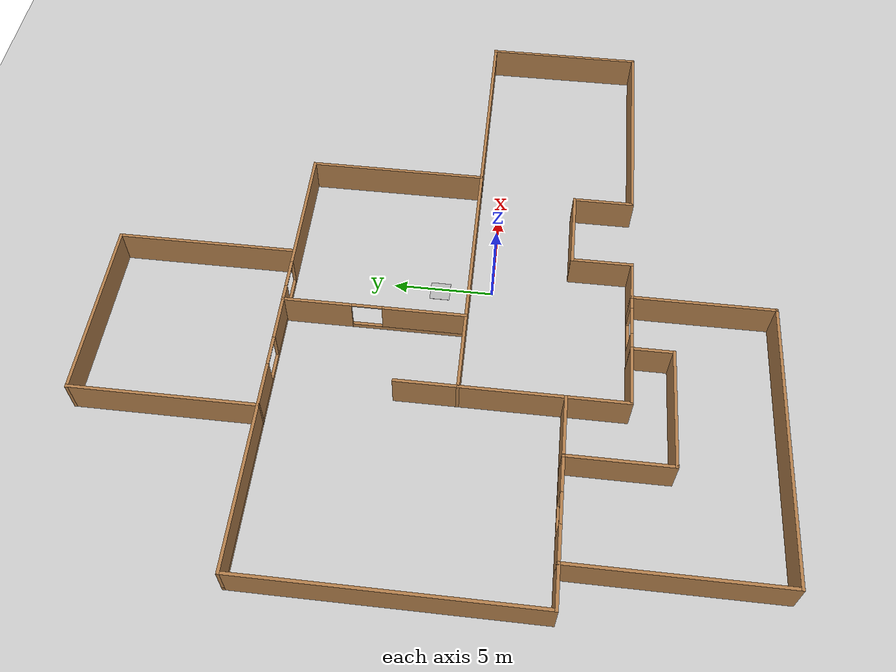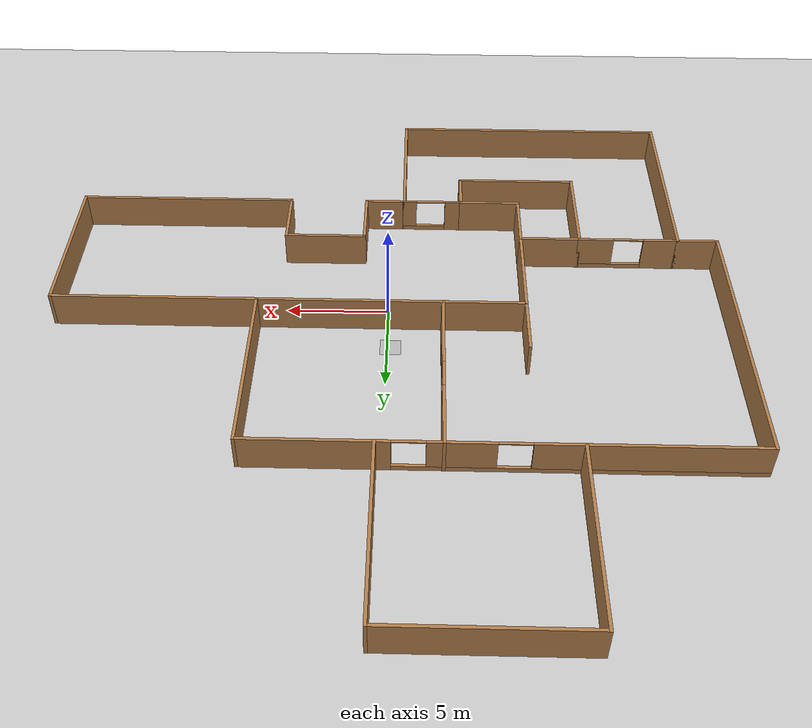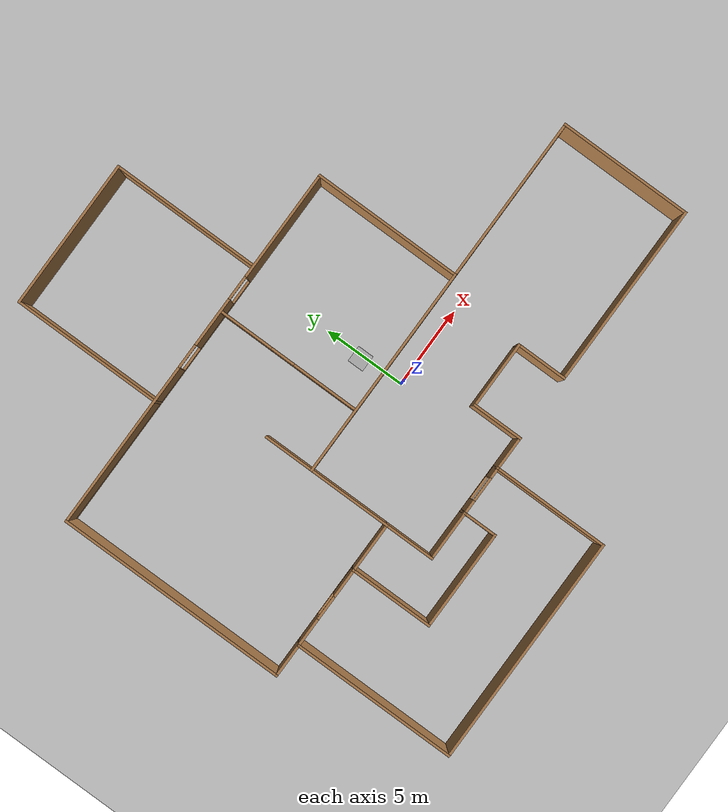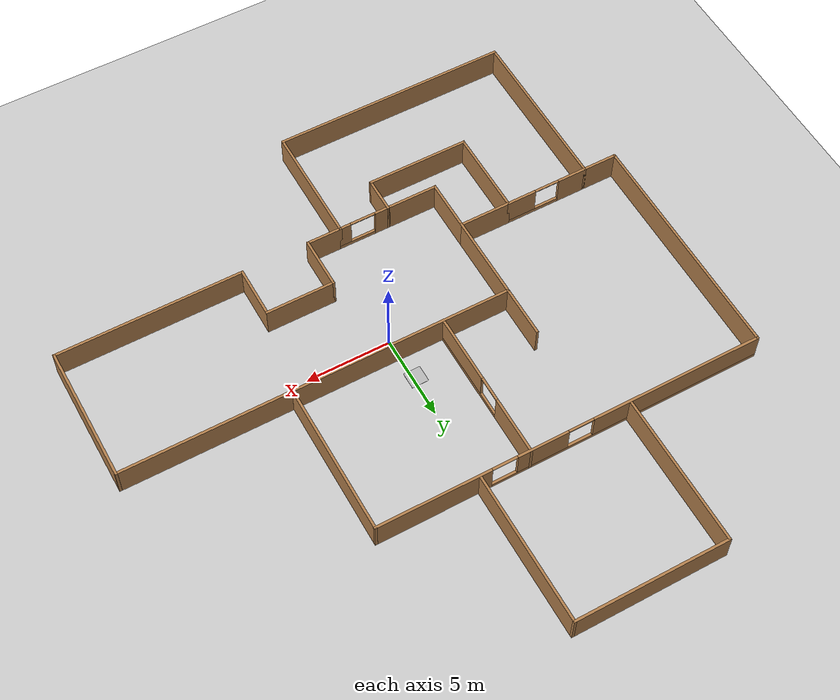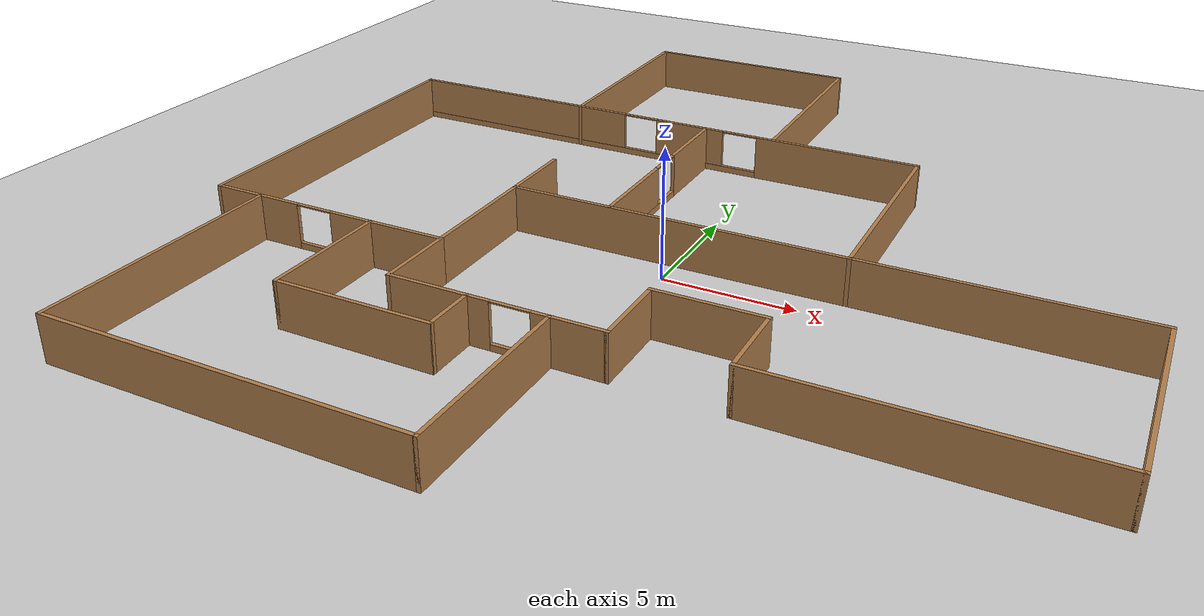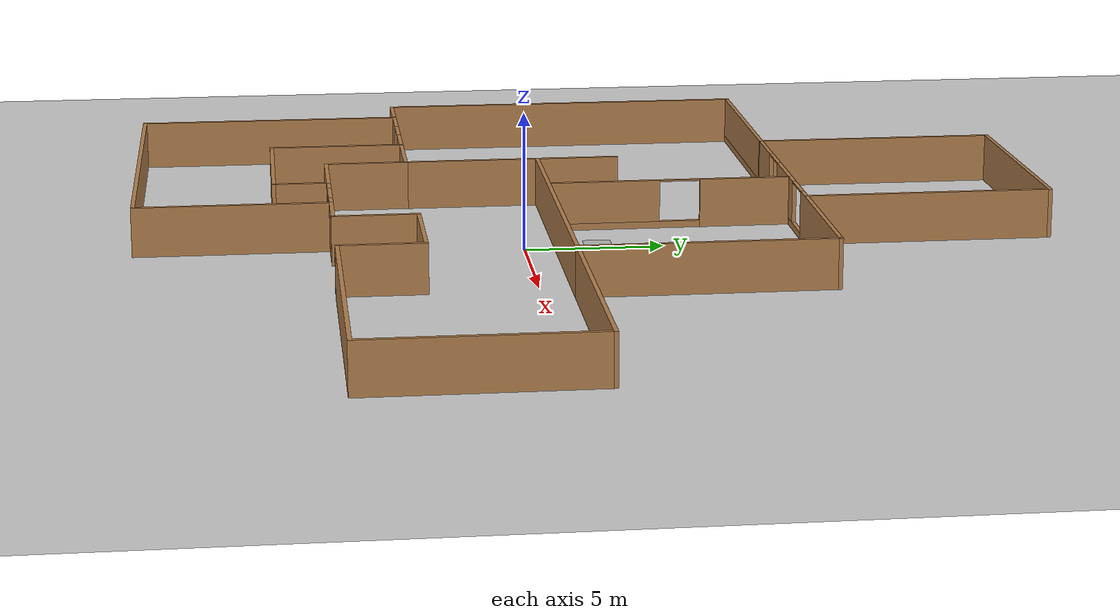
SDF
<sdf version="1.7">
 <world name="default">
  <model name="ground_plane">
   <static>1</static>
   <link name="link">
    <collision name="collision">
     <geometry><plane><normal>0 0 1</normal><size>25 25</size></plane></geometry>
     <surface><friction><ode><mu>100</mu><mu2>50</mu2></ode></friction></surface>
    </collision>
    <visual name="visual">
     <cast_shadows>0</cast_shadows>
     <geometry><plane><normal>0 0 1</normal><size>25 25</size></plane></geometry>
     <material>
      <script><uri>file://media/materials/scripts/gazebo.material</uri><name>Gazebo/Grey</name></script>
     </material>
    </visual>
   </link>
  </model>
  <model name="0810_MAP2_elment_1">
   <pose>-0.172553 2.6421 0 0 -0 0</pose>
   <link name="startflag">
    <pose>0 0 0.115 0 -0 0</pose>
    <inertial>
     <mass>0.39</mass>
     <inertia><ixx>0.00058</ixx><ixy>0</ixy><ixz>0</ixz><iyy>0.00058</iyy><iyz>0</iyz><izz>0.00019</izz></inertia>
    </inertial>
    <collision name="collision"><geometry><box><size>1 1 0.01</size></box></geometry></collision>
    <visual name="visual">
     <geometry><box><size>1 1 0.01</size></box></geometry>
     <material>
      <script>
       <uri>model://apriltag/materials/scripts</uri>
       <uri>model://apriltag/materials/textures</uri>
       <name>startflag/Diffuse</name>
      </script>
     </material>
    </visual>
   </link>
   <link name="Wall_0">
    <collision name="Wall_0_Collision">
     <geometry><box><size>13.15 0.15 1.8</size></box></geometry>
     <pose>0 0 0.9 0 -0 0</pose>
    </collision>
    <visual name="Wall_0_Visual">
     <pose>0 0 0.9 0 -0 0</pose>
     <geometry><box><size>13.15 0.15 1.8</size></box></geometry>
     <material>
      <script><uri>file://media/materials/scripts/gazebo.material</uri><name>Gazebo/Wood</name></script>
      <ambient>1 1 1 1</ambient>
     </material>
     <meta><layer>0</layer></meta>
    </visual>
    <pose>0 -1.5 0 0 -0 0</pose>
   </link>
   <link name="Wall_10">
    <collision name="Wall_10_Collision">
     <geometry><box><size>14.15 0.15 1.8</size></box></geometry>
     <pose>0 0 0.9 0 -0 0</pose>
    </collision>
    <visual name="Wall_10_Visual">
     <pose>0 0 0.9 0 -0 0</pose>
     <geometry><box><size>14.15 0.15 1.8</size></box></geometry>
     <material>
      <script><uri>file://media/materials/scripts/gazebo.material</uri><name>Gazebo/Wood</name></script>
      <ambient>1 1 1 1</ambient>
     </material>
     <meta><layer>0</layer></meta>
    </visual>
    <pose>-16.5 0.5 0 0 -0 -1.5708</pose>
   </link>
   <link name="Wall_14">
    <collision name="Wall_14_Collision">
     <geometry><box><size>5.15 0.15 1.8</size></box></geometry>
     <pose>0 0 0.9 0 -0 0</pose>
    </collision>
    <visual name="Wall_14_Visual">
     <pose>0 0 0.9 0 -0 0</pose>
     <geometry><box><size>5.15 0.15 1.8</size></box></geometry>
     <material>
      <script><uri>file://media/materials/scripts/gazebo.material</uri><name>Gazebo/Wood</name></script>
      <ambient>1 1 1 1</ambient>
     </material>
     <meta><layer>0</layer></meta>
    </visual>
    <pose>-6.5 -4 0 0 -0 -1.5708</pose>
   </link>
   <link name="Wall_16">
    <collision name="Wall_16_Collision">
     <geometry><box><size>10.15 0.15 1.8</size></box></geometry>
     <pose>0 0 0.9 0 -0 0</pose>
    </collision>
    <visual name="Wall_16_Visual">
     <pose>0 0 0.9 0 -0 0</pose>
     <geometry><box><size>10.15 0.15 1.8</size></box></geometry>
     <material>
      <script><uri>file://media/materials/scripts/gazebo.material</uri><name>Gazebo/Wood</name></script>
      <ambient>1 1 1 1</ambient>
     </material>
     <meta><layer>0</layer></meta>
    </visual>
    <pose>-14.5 -11.5 0 0 -0 -1.5708</pose>
   </link>
   <link name="Wall_18">
    <collision name="Wall_18_Collision">
     <geometry><box><size>3.15 0.15 1.8</size></box></geometry>
     <pose>0 0 0.9 0 -0 0</pose>
    </collision>
    <visual name="Wall_18_Visual">
     <pose>0 0 0.9 0 -0 0</pose>
     <geometry><box><size>3.15 0.15 1.8</size></box></geometry>
     <material>
      <script><uri>file://media/materials/scripts/gazebo.material</uri><name>Gazebo/Wood</name></script>
      <ambient>1 1 1 1</ambient>
     </material>
     <meta><layer>0</layer></meta>
    </visual>
    <pose>-6.5 -8 0 0 -0 -1.5708</pose>
   </link>
   <link name="Wall_2">
    <collision name="Wall_2_Collision">
     <geometry><box><size>9.15 0.15 1.8</size></box></geometry>
     <pose>0 0 0.9 0 -0 0</pose>
    </collision>
    <visual name="Wall_2_Visual">
     <pose>0 0 0.9 0 -0 0</pose>
     <geometry><box><size>9.15 0.15 1.8</size></box></geometry>
     <material>
      <script><uri>file://media/materials/scripts/gazebo.material</uri><name>Gazebo/Wood</name></script>
      <ambient>1 1 1 1</ambient>
     </material>
     <meta><layer>0</layer></meta>
    </visual>
    <pose>6.5 3 0 0 -0 1.5708</pose>
   </link>
   <link name="Wall_20">
    <collision name="Wall_20_Collision">
     <geometry><box><size>5.15 0.15 1.8</size></box></geometry>
     <pose>0 0 0.9 0 -0 0</pose>
    </collision>
    <visual name="Wall_20_Visual">
     <pose>0 0 0.9 0 -0 0</pose>
     <geometry><box><size>5.15 0.15 1.8</size></box></geometry>
     <material>
      <script><uri>file://media/materials/scripts/gazebo.material</uri><name>Gazebo/Wood</name></script>
      <ambient>1 1 1 1</ambient>
     </material>
     <meta><layer>0</layer></meta>
    </visual>
    <pose>-9.5 -9 0 0 -0 -1.5708</pose>
   </link>
   <link name="Wall_22">
    <collision name="Wall_22_Collision">
     <geometry><box><size>2.15 0.15 1.8</size></box></geometry>
     <pose>0 0 0.9 0 -0 0</pose>
    </collision>
    <visual name="Wall_22_Visual">
     <pose>0 0 0.9 0 -0 0</pose>
     <geometry><box><size>2.15 0.15 1.8</size></box></geometry>
     <material>
      <script><uri>file://media/materials/scripts/gazebo.material</uri><name>Gazebo/Wood</name></script>
      <ambient>1 1 1 1</ambient>
     </material>
     <meta><layer>0</layer></meta>
    </visual>
    <pose>-15.5 -6.5 0 0 -0 0</pose>
   </link>
   <link name="Wall_24">
    <collision name="Wall_24_Collision">
     <geometry><box><size>3.15 0.15 1.8</size></box></geometry>
     <pose>0 0 0.9 0 -0 0</pose>
    </collision>
    <visual name="Wall_24_Visual">
     <pose>0 0 0.9 0 -0 0</pose>
     <geometry><box><size>3.15 0.15 1.8</size></box></geometry>
     <material>
      <script><uri>file://media/materials/scripts/gazebo.material</uri><name>Gazebo/Wood</name></script>
      <ambient>1 1 1 1</ambient>
     </material>
     <meta><layer>0</layer></meta>
    </visual>
    <pose>-8 -6.5 0 0 -0 0</pose>
   </link>
   <link name="Wall_26">
    <collision name="Wall_26_Collision">
     <geometry><box><size>14.15 0.15 1.8</size></box></geometry>
     <pose>0 0 0.9 0 -0 0</pose>
    </collision>
    <visual name="Wall_26_Visual">
     <pose>0 0 0.9 0 -0 0</pose>
     <geometry><box><size>14.15 0.15 1.8</size></box></geometry>
     <material>
      <script><uri>file://media/materials/scripts/gazebo.material</uri><name>Gazebo/Wood</name></script>
      <ambient>1 1 1 1</ambient>
     </material>
     <meta><layer>0</layer></meta>
    </visual>
    <pose>-7.5 -16.5 0 0 -0 0</pose>
   </link>
   <link name="Wall_28">
    <collision name="Wall_28_Collision">
     <geometry><box><size>6.15 0.15 1.8</size></box></geometry>
     <pose>0 0 0.9 0 -0 0</pose>
    </collision>
    <visual name="Wall_28_Visual">
     <pose>0 0 0.9 0 -0 0</pose>
     <geometry><box><size>6.15 0.15 1.8</size></box></geometry>
     <material>
      <script><uri>file://media/materials/scripts/gazebo.material</uri><name>Gazebo/Wood</name></script>
      <ambient>1 1 1 1</ambient>
     </material>
     <meta><layer>0</layer></meta>
    </visual>
    <pose>-6.5 -11.5 0 0 -0 0</pose>
   </link>
   <link name="Wall_30">
    <collision name="Wall_30_Collision">
     <geometry><box><size>2.15 0.15 1.8</size></box></geometry>
     <pose>0 0 0.9 0 -0 0</pose>
    </collision>
    <visual name="Wall_30_Visual">
     <pose>0 0 0.9 0 -0 0</pose>
     <geometry><box><size>2.15 0.15 1.8</size></box></geometry>
     <material>
      <script><uri>file://media/materials/scripts/gazebo.material</uri><name>Gazebo/Wood</name></script>
      <ambient>1 1 1 1</ambient>
     </material>
     <meta><layer>0</layer></meta>
    </visual>
    <pose>-3.5 -10.5 0 0 -0 -1.5708</pose>
   </link>
   <link name="Wall_32">
    <collision name="Wall_32_Collision">
     <geometry><box><size>7.15 0.15 1.8</size></box></geometry>
     <pose>0 0 0.9 0 -0 0</pose>
    </collision>
    <visual name="Wall_32_Visual">
     <pose>0 0 0.9 0 -0 0</pose>
     <geometry><box><size>7.15 0.15 1.8</size></box></geometry>
     <material>
      <script><uri>file://media/materials/scripts/gazebo.material</uri><name>Gazebo/Wood</name></script>
      <ambient>1 1 1 1</ambient>
     </material>
     <meta><layer>0</layer></meta>
    </visual>
    <pose>-0.5 -13 0 0 -0 1.5708</pose>
   </link>
   <link name="Wall_36">
    <collision name="Wall_36_Collision">
     <geometry><box><size>3.15 0.15 1.8</size></box></geometry>
     <pose>0 0 0.9 0 -0 0</pose>
    </collision>
    <visual name="Wall_36_Visual">
     <pose>0 0 0.9 0 -0 0</pose>
     <geometry><box><size>3.15 0.15 1.8</size></box></geometry>
     <material>
      <script><uri>file://media/materials/scripts/gazebo.material</uri><name>Gazebo/Wood</name></script>
      <ambient>1 1 1 1</ambient>
     </material>
     <meta><layer>0</layer></meta>
    </visual>
    <pose>-5 -9.5 0 0 -0 0</pose>
   </link>
   <link name="Wall_37">
    <pose>-2 -9.5 0 0 -0 0</pose>
    <visual name="Wall_37_Visual_0">
     <pose>-1.11242 0 0.9 0 -0 0</pose>
     <geometry><box><size>0.925162 0.15 1.8</size></box></geometry>
     <material>
      <script><uri>file://media/materials/scripts/gazebo.material</uri><name>Gazebo/Wood</name></script>
      <ambient>1 1 1 1</ambient>
     </material>
     <meta><layer>0</layer></meta>
    </visual>
    <collision name="Wall_37_Collision_0">
     <geometry><box><size>0.925162 0.15 1.8</size></box></geometry>
     <pose>-1.11242 0 0.9 0 -0 0</pose>
    </collision>
    <visual name="Wall_37_Visual_1">
     <pose>0.462581 0 0.125 0 -0 0</pose>
     <geometry><box><size>2.22484 0.15 0.25</size></box></geometry>
     <material>
      <script><uri>file://media/materials/scripts/gazebo.material</uri><name>Gazebo/Wood</name></script>
      <ambient>1 1 1 1</ambient>
     </material>
     <meta><layer>0</layer></meta>
    </visual>
    <collision name="Wall_37_Collision_1">
     <geometry><box><size>2.22484 0.15 0.25</size></box></geometry>
     <pose>0.462581 0 0.125 0 -0 0</pose>
    </collision>
    <visual name="Wall_37_Visual_2">
     <pose>1.21258 0 1.025 0 -0 0</pose>
     <geometry><box><size>0.724838 0.15 1.55</size></box></geometry>
     <material>
      <script><uri>file://media/materials/scripts/gazebo.material</uri><name>Gazebo/Wood</name></script>
      <ambient>1 1 1 1</ambient>
     </material>
     <meta><layer>0</layer></meta>
    </visual>
    <collision name="Wall_37_Collision_2">
     <geometry><box><size>0.724838 0.15 1.55</size></box></geometry>
     <pose>1.21258 0 1.025 0 -0 0</pose>
    </collision>
    <visual name="Wall_37_Visual_3">
     <pose>0.100162 0 1.775 0 -0 0</pose>
     <geometry><box><size>1.5 0.15 0.05</size></box></geometry>
     <material>
      <script><uri>file://media/materials/scripts/gazebo.material</uri><name>Gazebo/Wood</name></script>
      <ambient>1 1 1 1</ambient>
     </material>
     <meta><layer>0</layer></meta>
    </visual>
    <collision name="Wall_37_Collision_3">
     <geometry><box><size>1.5 0.15 0.05</size></box></geometry>
     <pose>0.100162 0 1.775 0 -0 0</pose>
    </collision>
   </link>
   <link name="Wall_39">
    <pose>-12 -6.5 0 0 -0 0</pose>
    <visual name="Wall_39_Visual_0">
     <pose>-1.66475 0 0.9 0 -0 0</pose>
     <geometry><box><size>1.82051 0.15 1.8</size></box></geometry>
     <material>
      <script><uri>file://media/materials/scripts/gazebo.material</uri><name>Gazebo/Wood</name></script>
      <ambient>1 1 1 1</ambient>
     </material>
     <meta><layer>0</layer></meta>
    </visual>
    <collision name="Wall_39_Collision_0">
     <geometry><box><size>1.82051 0.15 1.8</size></box></geometry>
     <pose>-1.66475 0 0.9 0 -0 0</pose>
    </collision>
    <visual name="Wall_39_Visual_1">
     <pose>0.910253 0 0.125 0 -0 0</pose>
     <geometry><box><size>3.3295 0.15 0.25</size></box></geometry>
     <material>
      <script><uri>file://media/materials/scripts/gazebo.material</uri><name>Gazebo/Wood</name></script>
      <ambient>1 1 1 1</ambient>
     </material>
     <meta><layer>0</layer></meta>
    </visual>
    <collision name="Wall_39_Collision_1">
     <geometry><box><size>3.3295 0.15 0.25</size></box></geometry>
     <pose>0.910253 0 0.125 0 -0 0</pose>
    </collision>
    <visual name="Wall_39_Visual_2">
     <pose>1.66025 0 1.025 0 -0 0</pose>
     <geometry><box><size>1.8295 0.15 1.55</size></box></geometry>
     <material>
      <script><uri>file://media/materials/scripts/gazebo.material</uri><name>Gazebo/Wood</name></script>
      <ambient>1 1 1 1</ambient>
     </material>
     <meta><layer>0</layer></meta>
    </visual>
    <collision name="Wall_39_Collision_2">
     <geometry><box><size>1.8295 0.15 1.55</size></box></geometry>
     <pose>1.66025 0 1.025 0 -0 0</pose>
    </collision>
    <visual name="Wall_39_Visual_3">
     <pose>-0.004495 0 1.775 0 -0 0</pose>
     <geometry><box><size>1.5 0.15 0.05</size></box></geometry>
     <material>
      <script><uri>file://media/materials/scripts/gazebo.material</uri><name>Gazebo/Wood</name></script>
      <ambient>1 1 1 1</ambient>
     </material>
     <meta><layer>0</layer></meta>
    </visual>
    <collision name="Wall_39_Collision_3">
     <geometry><box><size>1.5 0.15 0.05</size></box></geometry>
     <pose>-0.004495 0 1.775 0 -0 0</pose>
    </collision>
   </link>
   <link name="Wall_4">
    <pose>-5 7.5 0 0 -0 3.14159</pose>
    <visual name="Wall_4_Visual_0">
     <pose>-8.17816 0 0.9 0 -0 0</pose>
     <geometry><box><size>6.79369 0.15 1.8</size></box></geometry>
     <material>
      <script><uri>file://media/materials/scripts/gazebo.material</uri><name>Gazebo/Wood</name></script>
      <ambient>1 1 1 1</ambient>
     </material>
     <meta><layer>0</layer></meta>
    </visual>
    <collision name="Wall_4_Collision_0">
     <geometry><box><size>6.79369 0.15 1.8</size></box></geometry>
     <pose>-8.17816 0 0.9 0 -0 0</pose>
    </collision>
    <visual name="Wall_4_Visual_1">
     <pose>3.39684 0 0.125 0 -0 0</pose>
     <geometry><box><size>16.3563 0.15 0.25</size></box></geometry>
     <material>
      <script><uri>file://media/materials/scripts/gazebo.material</uri><name>Gazebo/Wood</name></script>
      <ambient>1 1 1 1</ambient>
     </material>
     <meta><layer>0</layer></meta>
    </visual>
    <collision name="Wall_4_Collision_1">
     <geometry><box><size>16.3563 0.15 0.25</size></box></geometry>
     <pose>3.39684 0 0.125 0 -0 0</pose>
    </collision>
    <visual name="Wall_4_Visual_2">
     <pose>-1.75236 0 1.025 0 -0 0</pose>
     <geometry><box><size>3.0579 0.15 1.55</size></box></geometry>
     <material>
      <script><uri>file://media/materials/scripts/gazebo.material</uri><name>Gazebo/Wood</name></script>
      <ambient>1 1 1 1</ambient>
     </material>
     <meta><layer>0</layer></meta>
    </visual>
    <collision name="Wall_4_Collision_2">
     <geometry><box><size>3.0579 0.15 1.55</size></box></geometry>
     <pose>-1.75236 0 1.025 0 -0 0</pose>
    </collision>
    <visual name="Wall_4_Visual_3">
     <pose>6.4258 0 1.025 0 -0 0</pose>
     <geometry><box><size>10.2984 0.15 1.55</size></box></geometry>
     <material>
      <script><uri>file://media/materials/scripts/gazebo.material</uri><name>Gazebo/Wood</name></script>
      <ambient>1 1 1 1</ambient>
     </material>
     <meta><layer>0</layer></meta>
    </visual>
    <collision name="Wall_4_Collision_3">
     <geometry><box><size>10.2984 0.15 1.55</size></box></geometry>
     <pose>6.4258 0 1.025 0 -0 0</pose>
    </collision>
    <visual name="Wall_4_Visual_4">
     <pose>-4.03131 0 1.775 0 -0 0</pose>
     <geometry><box><size>1.5 0.15 0.05</size></box></geometry>
     <material>
      <script><uri>file://media/materials/scripts/gazebo.material</uri><name>Gazebo/Wood</name></script>
      <ambient>1 1 1 1</ambient>
     </material>
     <meta><layer>0</layer></meta>
    </visual>
    <collision name="Wall_4_Collision_4">
     <geometry><box><size>1.5 0.15 0.05</size></box></geometry>
     <pose>-4.03131 0 1.775 0 -0 0</pose>
    </collision>
    <visual name="Wall_4_Visual_5">
     <pose>0.526593 0 1.775 0 -0 0</pose>
     <geometry><box><size>1.5 0.15 0.05</size></box></geometry>
     <material>
      <script><uri>file://media/materials/scripts/gazebo.material</uri><name>Gazebo/Wood</name></script>
      <ambient>1 1 1 1</ambient>
     </material>
     <meta><layer>0</layer></meta>
    </visual>
    <collision name="Wall_4_Collision_5">
     <geometry><box><size>1.5 0.15 0.05</size></box></geometry>
     <pose>0.526593 0 1.775 0 -0 0</pose>
    </collision>
   </link>
   <link name="Wall_41">
    <collision name="Wall_41_Collision">
     <geometry><box><size>3.15 0.15 1.8</size></box></geometry>
     <pose>0 0 0.9 0 -0 0</pose>
    </collision>
    <visual name="Wall_41_Visual">
     <pose>0 0 0.9 0 -0 0</pose>
     <geometry><box><size>3.15 0.15 1.8</size></box></geometry>
     <material>
      <script><uri>file://media/materials/scripts/gazebo.material</uri><name>Gazebo/Wood</name></script>
      <ambient>1 1 1 1</ambient>
     </material>
     <meta><layer>0</layer></meta>
    </visual>
    <pose>-6.5 0 0 0 -0 1.5708</pose>
   </link>
   <link name="Wall_43">
    <collision name="Wall_43_Collision">
     <geometry><box><size>2.15 0.15 1.8</size></box></geometry>
     <pose>0 0 0.9 0 -0 0</pose>
    </collision>
    <visual name="Wall_43_Visual">
     <pose>0 0 0.9 0 -0 0</pose>
     <geometry><box><size>2.15 0.15 1.8</size></box></geometry>
     <material>
      <script><uri>file://media/materials/scripts/gazebo.material</uri><name>Gazebo/Wood</name></script>
      <ambient>1 1 1 1</ambient>
     </material>
     <meta><layer>0</layer></meta>
    </visual>
    <pose>0.5 -9.5 0 0 -0 0</pose>
   </link>
   <link name="Wall_44">
    <collision name="Wall_44_Collision">
     <geometry><box><size>3.15 0.15 1.8</size></box></geometry>
     <pose>0 0 0.9 0 -0 0</pose>
    </collision>
    <visual name="Wall_44_Visual">
     <pose>0 0 0.9 0 -0 0</pose>
     <geometry><box><size>3.15 0.15 1.8</size></box></geometry>
     <material>
      <script><uri>file://media/materials/scripts/gazebo.material</uri><name>Gazebo/Wood</name></script>
      <ambient>1 1 1 1</ambient>
     </material>
     <meta><layer>0</layer></meta>
    </visual>
    <pose>1.5 -8 0 0 -0 1.5708</pose>
   </link>
   <link name="Wall_45">
    <collision name="Wall_45_Collision">
     <geometry><box><size>4.15 0.15 1.8</size></box></geometry>
     <pose>0 0 0.9 0 -0 0</pose>
    </collision>
    <visual name="Wall_45_Visual">
     <pose>0 0 0.9 0 -0 0</pose>
     <geometry><box><size>4.15 0.15 1.8</size></box></geometry>
     <material>
      <script><uri>file://media/materials/scripts/gazebo.material</uri><name>Gazebo/Wood</name></script>
      <ambient>1 1 1 1</ambient>
     </material>
     <meta><layer>0</layer></meta>
    </visual>
    <pose>3.5 -6.5 0 0 -0 0</pose>
   </link>
   <link name="Wall_46">
    <collision name="Wall_46_Collision">
     <geometry><box><size>3.15 0.15 1.8</size></box></geometry>
     <pose>0 0 0.9 0 -0 0</pose>
    </collision>
    <visual name="Wall_46_Visual">
     <pose>0 0 0.9 0 -0 0</pose>
     <geometry><box><size>3.15 0.15 1.8</size></box></geometry>
     <material>
      <script><uri>file://media/materials/scripts/gazebo.material</uri><name>Gazebo/Wood</name></script>
      <ambient>1 1 1 1</ambient>
     </material>
     <meta><layer>0</layer></meta>
    </visual>
    <pose>5.5 -8 0 0 -0 -1.5708</pose>
   </link>
   <link name="Wall_47">
    <collision name="Wall_47_Collision">
     <geometry><box><size>11.15 0.15 1.8</size></box></geometry>
     <pose>0 0 0.9 0 -0 0</pose>
    </collision>
    <visual name="Wall_47_Visual">
     <pose>0 0 0.9 0 -0 0</pose>
     <geometry><box><size>11.15 0.15 1.8</size></box></geometry>
     <material>
      <script><uri>file://media/materials/scripts/gazebo.material</uri><name>Gazebo/Wood</name></script>
      <ambient>1 1 1 1</ambient>
     </material>
     <meta><layer>0</layer></meta>
    </visual>
    <pose>11 -9.5 0 0 -0 0</pose>
   </link>
   <link name="Wall_48">
    <collision name="Wall_48_Collision">
     <geometry><box><size>8.15 0.15 1.8</size></box></geometry>
     <pose>0 0 0.9 0 -0 0</pose>
    </collision>
    <visual name="Wall_48_Visual">
     <pose>0 0 0.9 0 -0 0</pose>
     <geometry><box><size>8.15 0.15 1.8</size></box></geometry>
     <material>
      <script><uri>file://media/materials/scripts/gazebo.material</uri><name>Gazebo/Wood</name></script>
      <ambient>1 1 1 1</ambient>
     </material>
     <meta><layer>0</layer></meta>
    </visual>
    <pose>16.5 -5.5 0 0 -0 1.5708</pose>
   </link>
   <link name="Wall_49">
    <collision name="Wall_49_Collision">
     <geometry><box><size>10.15 0.15 1.8</size></box></geometry>
     <pose>0 0 0.9 0 -0 0</pose>
    </collision>
    <visual name="Wall_49_Visual">
     <pose>0 0 0.9 0 -0 0</pose>
     <geometry><box><size>10.15 0.15 1.8</size></box></geometry>
     <material>
      <script><uri>file://media/materials/scripts/gazebo.material</uri><name>Gazebo/Wood</name></script>
      <ambient>1 1 1 1</ambient>
     </material>
     <meta><layer>0</layer></meta>
    </visual>
    <pose>11.5 -1.5 0 0 -0 3.14159</pose>
   </link>
   <link name="Wall_54">
    <collision name="Wall_54_Collision">
     <geometry><box><size>9.15 0.15 1.8</size></box></geometry>
     <pose>0 0 0.9 0 -0 0</pose>
    </collision>
    <visual name="Wall_54_Visual">
     <pose>0 0 0.9 0 -0 0</pose>
     <geometry><box><size>9.15 0.15 1.8</size></box></geometry>
     <material>
      <script><uri>file://media/materials/scripts/gazebo.material</uri><name>Gazebo/Wood</name></script>
      <ambient>1 1 1 1</ambient>
     </material>
     <meta><layer>0</layer></meta>
    </visual>
    <pose>-4 16.5 0 0 -0 3.14159</pose>
   </link>
   <link name="Wall_57">
    <collision name="Wall_57_Collision">
     <geometry><box><size>9.15 0.15 1.8</size></box></geometry>
     <pose>0 0 0.9 0 -0 0</pose>
    </collision>
    <visual name="Wall_57_Visual">
     <pose>0 0 0.9 0 -0 0</pose>
     <geometry><box><size>9.15 0.15 1.8</size></box></geometry>
     <material>
      <script><uri>file://media/materials/scripts/gazebo.material</uri><name>Gazebo/Wood</name></script>
      <ambient>1 1 1 1</ambient>
     </material>
     <meta><layer>0</layer></meta>
    </visual>
    <pose>-8.5 12 0 0 -0 -1.5708</pose>
   </link>
   <link name="Wall_6">
    <pose>-2.5 3 0 0 -0 -1.5708</pose>
    <visual name="Wall_6_Visual_0">
     <pose>-2.84145 0 0.9 0 -0 0</pose>
     <geometry><box><size>3.46711 0.15 1.8</size></box></geometry>
     <material>
      <script><uri>file://media/materials/scripts/gazebo.material</uri><name>Gazebo/Wood</name></script>
      <ambient>1 1 1 1</ambient>
     </material>
     <meta><layer>0</layer></meta>
    </visual>
    <collision name="Wall_6_Collision_0">
     <geometry><box><size>3.46711 0.15 1.8</size></box></geometry>
     <pose>-2.84145 0 0.9 0 -0 0</pose>
    </collision>
    <visual name="Wall_6_Visual_1">
     <pose>1.73355 0 0.125 0 -0 0</pose>
     <geometry><box><size>5.68289 0.15 0.25</size></box></geometry>
     <material>
      <script><uri>file://media/materials/scripts/gazebo.material</uri><name>Gazebo/Wood</name></script>
      <ambient>1 1 1 1</ambient>
     </material>
     <meta><layer>0</layer></meta>
    </visual>
    <collision name="Wall_6_Collision_1">
     <geometry><box><size>5.68289 0.15 0.25</size></box></geometry>
     <pose>1.73355 0 0.125 0 -0 0</pose>
    </collision>
    <visual name="Wall_6_Visual_2">
     <pose>2.48355 0 1.025 0 -0 0</pose>
     <geometry><box><size>4.18289 0.15 1.55</size></box></geometry>
     <material>
      <script><uri>file://media/materials/scripts/gazebo.material</uri><name>Gazebo/Wood</name></script>
      <ambient>1 1 1 1</ambient>
     </material>
     <meta><layer>0</layer></meta>
    </visual>
    <collision name="Wall_6_Collision_2">
     <geometry><box><size>4.18289 0.15 1.55</size></box></geometry>
     <pose>2.48355 0 1.025 0 -0 0</pose>
    </collision>
    <visual name="Wall_6_Visual_3">
     <pose>-0.357894 0 1.775 0 -0 0</pose>
     <geometry><box><size>1.5 0.15 0.05</size></box></geometry>
     <material>
      <script><uri>file://media/materials/scripts/gazebo.material</uri><name>Gazebo/Wood</name></script>
      <ambient>1 1 1 1</ambient>
     </material>
     <meta><layer>0</layer></meta>
    </visual>
    <collision name="Wall_6_Collision_3">
     <geometry><box><size>1.5 0.15 0.05</size></box></geometry>
     <pose>-0.357894 0 1.775 0 -0 0</pose>
    </collision>
   </link>
   <link name="Wall_8">
    <collision name="Wall_8_Collision">
     <geometry><box><size>9.15 0.15 1.8</size></box></geometry>
     <pose>0 0 0.9 0 -0 0</pose>
    </collision>
    <visual name="Wall_8_Visual">
     <pose>0 0 0.9 0 -0 0</pose>
     <geometry><box><size>9.15 0.15 1.8</size></box></geometry>
     <material>
      <script><uri>file://media/materials/scripts/gazebo.material</uri><name>Gazebo/Wood</name></script>
      <ambient>1 1 1 1</ambient>
     </material>
     <meta><layer>0</layer></meta>
    </visual>
    <pose>0.5 12 0 0 -0 1.5708</pose>
   </link>
   <static>1</static>
  </model>
 </world>
</sdf>
